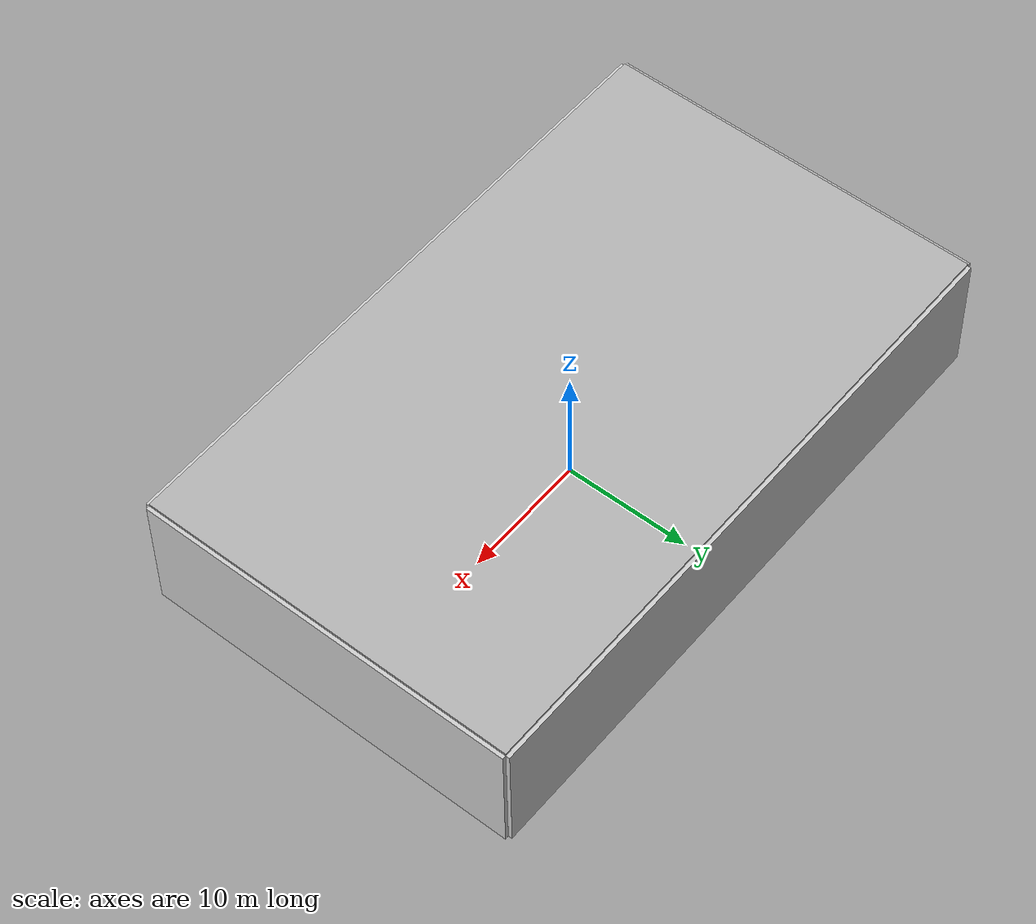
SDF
<?xml version="1.0"?>
<sdf version="1.9">
  <world name="warehouse">

    <!-- ── Physics ──────────────────────────────────────────────────── -->
    <physics name="1ms" type="ode">
      <max_step_size>0.001</max_step_size>
      <real_time_factor>1.0</real_time_factor>
      <real_time_update_rate>1000</real_time_update_rate>
    </physics>

    <!-- ── Plugins ──────────────────────────────────────────────────── -->
    <plugin filename="gz-sim-physics-system" name="gz::sim::systems::Physics"/>
    <plugin filename="gz-sim-user-commands-system" name="gz::sim::systems::UserCommands"/>
    <plugin filename="gz-sim-scene-broadcaster-system" name="gz::sim::systems::SceneBroadcaster"/>
    <plugin filename="gz-sim-sensors-system" name="gz::sim::systems::Sensors">
      <render_engine>ogre2</render_engine>
    </plugin>
    <plugin filename="gz-sim-imu-system" name="gz::sim::systems::Imu"/>
    <plugin filename="gz-sim-navsat-system" name="gz::sim::systems::NavSat"/>
    <plugin filename="gz-sim-air-pressure-system" name="gz::sim::systems::AirPressure"/>
    <plugin filename="gz-sim-magnetometer-system" name="gz::sim::systems::Magnetometer"/>

    <!-- ── GPS origin ───────────────────────────────────────────────── -->
    <spherical_coordinates>
      <surface_model>EARTH_WGS84</surface_model>
      <world_frame_orientation>ENU</world_frame_orientation>
      <latitude_deg>47.3977419</latitude_deg>
      <longitude_deg>8.5455938</longitude_deg>
      <elevation>488.0</elevation>
      <heading_deg>0</heading_deg>
    </spherical_coordinates>

    <!-- ── Lighting ─────────────────────────────────────────────────── -->
    <scene>
      <ambient>0.3 0.3 0.3 1</ambient>
      <background>0.1 0.1 0.1 1</background>
      <shadows>true</shadows>
    </scene>

    <!-- Indoor overhead lights -->
    <light type="point" name="ceiling_light_1">
      <pose>0 0 9.5 0 0 0</pose>
      <diffuse>1.0 0.95 0.85 1</diffuse>
      <specular>0.5 0.5 0.5 1</specular>
      <attenuation>
        <range>30</range>
        <constant>0.5</constant>
        <linear>0.05</linear>
        <quadratic>0.005</quadratic>
      </attenuation>
      <cast_shadows>true</cast_shadows>
    </light>

    <light type="point" name="ceiling_light_2">
      <pose>15 0 9.5 0 0 0</pose>
      <diffuse>1.0 0.95 0.85 1</diffuse>
      <specular>0.5 0.5 0.5 1</specular>
      <attenuation>
        <range>30</range>
        <constant>0.5</constant>
        <linear>0.05</linear>
        <quadratic>0.005</quadratic>
      </attenuation>
      <cast_shadows>true</cast_shadows>
    </light>

    <light type="point" name="ceiling_light_3">
      <pose>-15 0 9.5 0 0 0</pose>
      <diffuse>1.0 0.95 0.85 1</diffuse>
      <specular>0.5 0.5 0.5 1</specular>
      <attenuation>
        <range>30</range>
        <constant>0.5</constant>
        <linear>0.05</linear>
        <quadratic>0.005</quadratic>
      </attenuation>
      <cast_shadows>false</cast_shadows>
    </light>

    <!-- ── Floor ────────────────────────────────────────────────────── -->
    <model name="warehouse_floor">
      <static>true</static>
      <link name="link">
        <collision name="collision">
          <geometry>
            <box><size>50 30 0.1</size></box>
          </geometry>
        </collision>
        <visual name="visual">
          <geometry>
            <box><size>50 30 0.1</size></box>
          </geometry>
          <material>
            <ambient>0.5 0.5 0.5 1</ambient>
            <diffuse>0.6 0.6 0.6 1</diffuse>
          </material>
        </visual>
        <pose>0 0 -0.05 0 0 0</pose>
      </link>
    </model>

    <!-- ── Walls ────────────────────────────────────────────────────── -->
    <!-- North wall -->
    <model name="wall_north">
      <static>true</static>
      <link name="link">
        <collision name="collision">
          <geometry><box><size>50 0.3 10</size></box></geometry>
        </collision>
        <visual name="visual">
          <geometry><box><size>50 0.3 10</size></box></geometry>
          <material>
            <ambient>0.7 0.7 0.7 1</ambient>
            <diffuse>0.8 0.8 0.8 1</diffuse>
          </material>
        </visual>
      </link>
      <pose>0 15.15 5 0 0 0</pose>
    </model>

    <!-- South wall -->
    <model name="wall_south">
      <static>true</static>
      <link name="link">
        <collision name="collision">
          <geometry><box><size>50 0.3 10</size></box></geometry>
        </collision>
        <visual name="visual">
          <geometry><box><size>50 0.3 10</size></box></geometry>
          <material>
            <ambient>0.7 0.7 0.7 1</ambient>
            <diffuse>0.8 0.8 0.8 1</diffuse>
          </material>
        </visual>
      </link>
      <pose>0 -15.15 5 0 0 0</pose>
    </model>

    <!-- East wall -->
    <model name="wall_east">
      <static>true</static>
      <link name="link">
        <collision name="collision">
          <geometry><box><size>0.3 30 10</size></box></geometry>
        </collision>
        <visual name="visual">
          <geometry><box><size>0.3 30 10</size></box></geometry>
          <material>
            <ambient>0.7 0.7 0.7 1</ambient>
            <diffuse>0.8 0.8 0.8 1</diffuse>
          </material>
        </visual>
      </link>
      <pose>25.15 0 5 0 0 0</pose>
    </model>

    <!-- West wall -->
    <model name="wall_west">
      <static>true</static>
      <link name="link">
        <collision name="collision">
          <geometry><box><size>0.3 30 10</size></box></geometry>
        </collision>
        <visual name="visual">
          <geometry><box><size>0.3 30 10</size></box></geometry>
          <material>
            <ambient>0.7 0.7 0.7 1</ambient>
            <diffuse>0.8 0.8 0.8 1</diffuse>
          </material>
        </visual>
      </link>
      <pose>-25.15 0 5 0 0 0</pose>
    </model>

    <!-- ── Ceiling ──────────────────────────────────────────────────── -->
    <model name="ceiling">
      <static>true</static>
      <link name="link">
        <collision name="collision">
          <geometry><box><size>50 30 0.2</size></box></geometry>
        </collision>
        <visual name="visual">
          <geometry><box><size>50 30 0.2</size></box></geometry>
          <material>
            <ambient>0.6 0.6 0.6 1</ambient>
            <diffuse>0.7 0.7 0.7 1</diffuse>
          </material>
        </visual>
      </link>
      <pose>0 0 10.1 0 0 0</pose>
    </model>

    <!-- ── Shelving units ───────────────────────────────────────────── -->
    <model name="shelf_row_1">
      <static>true</static>
      <link name="link">
        <collision name="collision">
          <geometry><box><size>15 1.2 4</size></box></geometry>
        </collision>
        <visual name="visual">
          <geometry><box><size>15 1.2 4</size></box></geometry>
          <material>
            <ambient>0.4 0.3 0.2 1</ambient>
            <diffuse>0.5 0.35 0.25 1</diffuse>
          </material>
        </visual>
      </link>
      <pose>-5 -8 2 0 0 0</pose>
    </model>

    <model name="shelf_row_2">
      <static>true</static>
      <link name="link">
        <collision name="collision">
          <geometry><box><size>15 1.2 4</size></box></geometry>
        </collision>
        <visual name="visual">
          <geometry><box><size>15 1.2 4</size></box></geometry>
          <material>
            <ambient>0.4 0.3 0.2 1</ambient>
            <diffuse>0.5 0.35 0.25 1</diffuse>
          </material>
        </visual>
      </link>
      <pose>-5 -3 2 0 0 0</pose>
    </model>

    <model name="shelf_row_3">
      <static>true</static>
      <link name="link">
        <collision name="collision">
          <geometry><box><size>15 1.2 4</size></box></geometry>
        </collision>
        <visual name="visual">
          <geometry><box><size>15 1.2 4</size></box></geometry>
          <material>
            <ambient>0.4 0.3 0.2 1</ambient>
            <diffuse>0.5 0.35 0.25 1</diffuse>
          </material>
        </visual>
      </link>
      <pose>-5 3 2 0 0 0</pose>
    </model>

    <model name="shelf_row_4">
      <static>true</static>
      <link name="link">
        <collision name="collision">
          <geometry><box><size>15 1.2 4</size></box></geometry>
        </collision>
        <visual name="visual">
          <geometry><box><size>15 1.2 4</size></box></geometry>
          <material>
            <ambient>0.4 0.3 0.2 1</ambient>
            <diffuse>0.5 0.35 0.25 1</diffuse>
          </material>
        </visual>
      </link>
      <pose>-5 8 2 0 0 0</pose>
    </model>

    <!-- ── Obstacles (scattered boxes) ──────────────────────────────── -->
    <model name="crate_1">
      <static>true</static>
      <link name="link">
        <collision name="collision">
          <geometry><box><size>1.0 1.0 1.0</size></box></geometry>
        </collision>
        <visual name="visual">
          <geometry><box><size>1.0 1.0 1.0</size></box></geometry>
          <material>
            <ambient>0.6 0.4 0.2 1</ambient>
            <diffuse>0.7 0.5 0.3 1</diffuse>
          </material>
        </visual>
      </link>
      <pose>10 5 0.5 0 0 0.3</pose>
    </model>

    <model name="crate_2">
      <static>true</static>
      <link name="link">
        <collision name="collision">
          <geometry><box><size>0.8 0.8 1.5</size></box></geometry>
        </collision>
        <visual name="visual">
          <geometry><box><size>0.8 0.8 1.5</size></box></geometry>
          <material>
            <ambient>0.5 0.5 0.3 1</ambient>
            <diffuse>0.6 0.6 0.4 1</diffuse>
          </material>
        </visual>
      </link>
      <pose>12 -6 0.75 0 0 -0.2</pose>
    </model>

    <model name="pillar_1">
      <static>true</static>
      <link name="link">
        <collision name="collision">
          <geometry><cylinder><radius>0.3</radius><length>10</length></cylinder></geometry>
        </collision>
        <visual name="visual">
          <geometry><cylinder><radius>0.3</radius><length>10</length></cylinder></geometry>
          <material>
            <ambient>0.6 0.6 0.6 1</ambient>
            <diffuse>0.7 0.7 0.7 1</diffuse>
          </material>
        </visual>
      </link>
      <pose>8 0 5 0 0 0</pose>
    </model>

    <model name="pillar_2">
      <static>true</static>
      <link name="link">
        <collision name="collision">
          <geometry><cylinder><radius>0.3</radius><length>10</length></cylinder></geometry>
        </collision>
        <visual name="visual">
          <geometry><cylinder><radius>0.3</radius><length>10</length></cylinder></geometry>
          <material>
            <ambient>0.6 0.6 0.6 1</ambient>
            <diffuse>0.7 0.7 0.7 1</diffuse>
          </material>
        </visual>
      </link>
      <pose>-8 0 5 0 0 0</pose>
    </model>

  </world>
</sdf>
